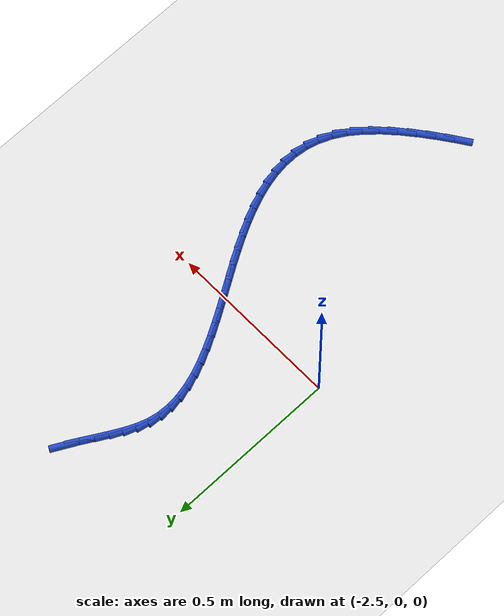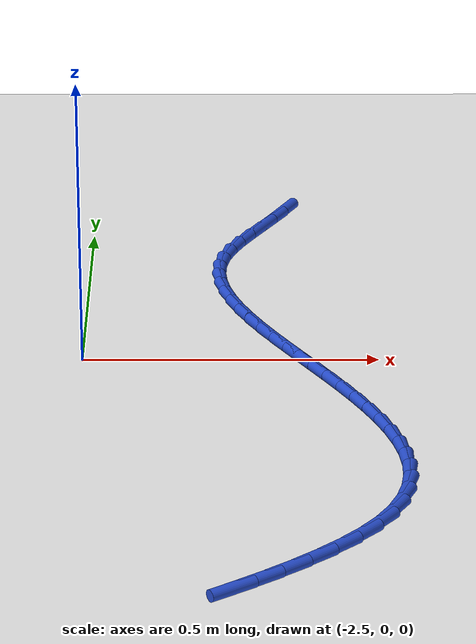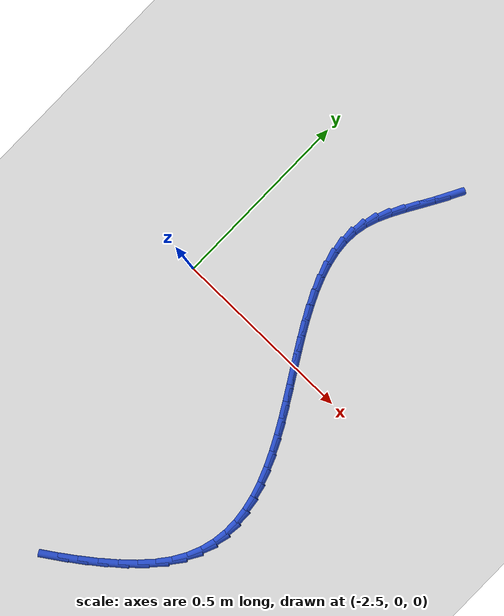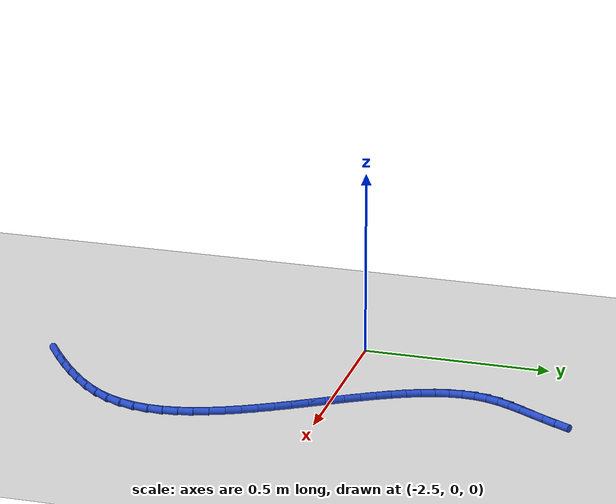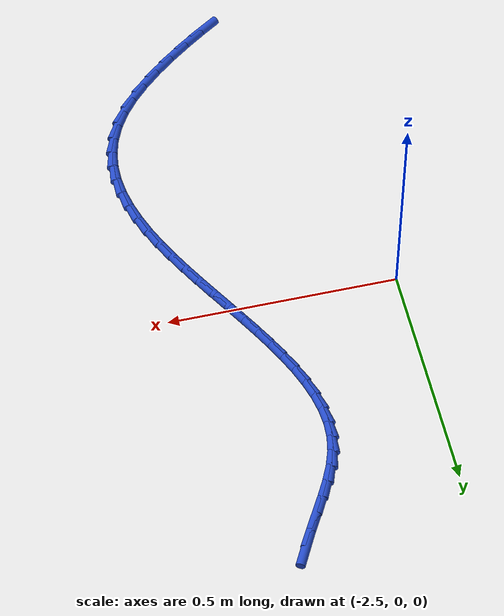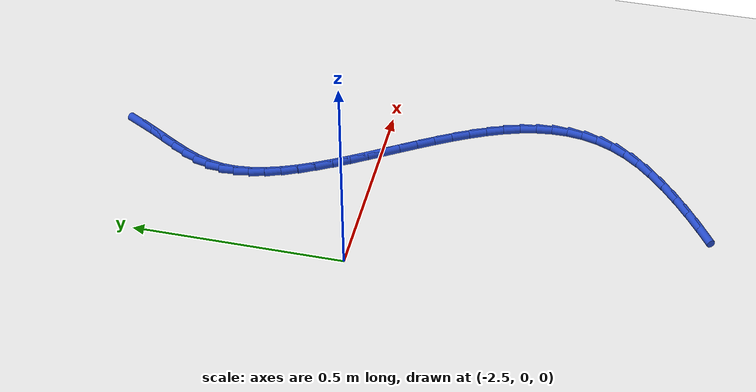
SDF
<sdf version="1.6">
 <world name="default">
  <model name="ground_plane">
   <static>1</static>
   <link name="link">
    <collision name="collision">
     <geometry><plane><normal>0 0 1</normal><size>100 100</size></plane></geometry>
     <surface><friction><ode><mu>100</mu><mu2>50</mu2></ode></friction></surface>
    </collision>
    <visual name="visual">
     <cast_shadows>0</cast_shadows>
     <geometry><plane><normal>0 0 1</normal><size>100 100</size></plane></geometry>
     <material>
      <script><uri>file://media/materials/scripts/gazebo.material</uri><name>Gazebo/WhiteGlow</name></script>
     </material>
    </visual>
   </link>
  </model>
  <model name="line">
   <link name="link_92">
    <pose>-2.1569101457007522 0.5942818139172366 0.01 0 1.57 1.0788738891274638</pose>
    <collision name="collision">
     <geometry><cylinder><radius>0.01</radius><length>0.08</length></cylinder></geometry>
    </collision>
    <visual name="visual">
     <material>
      <script><name>Gazebo/Blue</name><uri>file://media/materials/scripts/gazebo.material</uri></script>
     </material>
     <geometry><cylinder><radius>0.01</radius><length>0.08</length></cylinder></geometry>
    </visual>
   </link>
   <link name="link_93">
    <pose>-2.176479058954072 0.5577631131018529 0.01 0 1.57 1.0461234089684404</pose>
    <collision name="collision">
     <geometry><cylinder><radius>0.01</radius><length>0.08</length></cylinder></geometry>
    </collision>
    <visual name="visual">
     <material>
      <script><name>Gazebo/Blue</name><uri>file://media/materials/scripts/gazebo.material</uri></script>
     </material>
     <geometry><cylinder><radius>0.01</radius><length>0.08</length></cylinder></geometry>
    </visual>
   </link>
   <link name="link_94">
    <pose>-2.1967582421894334 0.5227255065405398 0.01 0 1.57 1.0421132653548126</pose>
    <collision name="collision">
     <geometry><cylinder><radius>0.01</radius><length>0.08</length></cylinder></geometry>
    </collision>
    <visual name="visual">
     <material>
      <script><name>Gazebo/Blue</name><uri>file://media/materials/scripts/gazebo.material</uri></script>
     </material>
     <geometry><cylinder><radius>0.01</radius><length>0.08</length></cylinder></geometry>
    </visual>
   </link>
   <link name="link_95">
    <pose>-2.2165904875612408 0.4887748637339923 0.01 0 1.57 1.0694247133861268</pose>
    <collision name="collision">
     <geometry><cylinder><radius>0.01</radius><length>0.08</length></cylinder></geometry>
    </collision>
    <visual name="visual">
     <material>
      <script><name>Gazebo/Blue</name><uri>file://media/materials/scripts/gazebo.material</uri></script>
     </material>
     <geometry><cylinder><radius>0.01</radius><length>0.08</length></cylinder></geometry>
    </visual>
   </link>
   <link name="link_96">
    <pose>-2.2348185872239013 0.4555170541829038 0.01 0 1.57 1.1320328790445908</pose>
    <collision name="collision">
     <geometry><cylinder><radius>0.01</radius><length>0.08</length></cylinder></geometry>
    </collision>
    <visual name="visual">
     <material>
      <script><name>Gazebo/Blue</name><uri>file://media/materials/scripts/gazebo.material</uri></script>
     </material>
     <geometry><cylinder><radius>0.01</radius><length>0.08</length></cylinder></geometry>
    </visual>
   </link>
   <link name="link_97">
    <pose>-2.250285333331819 0.42255794738796915 0.01 0 1.57 1.2346849685255605</pose>
    <collision name="collision">
     <geometry><cylinder><radius>0.01</radius><length>0.08</length></cylinder></geometry>
    </collision>
    <visual name="visual">
     <material>
      <script><name>Gazebo/Blue</name><uri>file://media/materials/scripts/gazebo.material</uri></script>
     </material>
     <geometry><cylinder><radius>0.01</radius><length>0.08</length></cylinder></geometry>
    </visual>
   </link>
   <link name="link_98">
    <pose>-2.261833518039401 0.38950341284988205 0.01 0 1.57 1.37721544960513</pose>
    <collision name="collision">
     <geometry><cylinder><radius>0.01</radius><length>0.08</length></cylinder></geometry>
    </collision>
    <visual name="visual">
     <material>
      <script><name>Gazebo/Blue</name><uri>file://media/materials/scripts/gazebo.material</uri></script>
     </material>
     <geometry><cylinder><radius>0.01</radius><length>0.08</length></cylinder></geometry>
    </visual>
   </link>
   <link name="link_99">
    <pose>-2.268404277793017 0.35598523952294214 0.01 0 1.57 1.5266387335055462</pose>
    <collision name="collision">
     <geometry><cylinder><radius>0.01</radius><length>0.08</length></cylinder></geometry>
    </collision>
    <visual name="visual">
     <material>
      <script><name>Gazebo/Blue</name><uri>file://media/materials/scripts/gazebo.material</uri></script>
     </material>
     <geometry><cylinder><radius>0.01</radius><length>0.08</length></cylinder></geometry>
    </visual>
   </link>
   <link name="link_100">
    <pose>-2.2699107590817555 0.3218913976679961 0.01 0 1.57 -1.481807915594717</pose>
    <collision name="collision">
     <geometry><cylinder><radius>0.01</radius><length>0.08</length></cylinder></geometry>
    </collision>
    <visual name="visual">
     <material>
      <script><name>Gazebo/Blue</name><uri>file://media/materials/scripts/gazebo.material</uri></script>
     </material>
     <geometry><cylinder><radius>0.01</radius><length>0.08</length></cylinder></geometry>
    </visual>
   </link>
   <link name="link_101">
    <pose>-2.2668204446412354 0.28725595746014987 0.01 0 1.57 -1.368346243201321</pose>
    <collision name="collision">
     <geometry><cylinder><radius>0.01</radius><length>0.08</length></cylinder></geometry>
    </collision>
    <visual name="visual">
     <material>
      <script><name>Gazebo/Blue</name><uri>file://media/materials/scripts/gazebo.material</uri></script>
     </material>
     <geometry><cylinder><radius>0.01</radius><length>0.08</length></cylinder></geometry>
    </visual>
   </link>
   <link name="link_102">
    <pose>-2.259607275632391 0.2521146912460552 0.01 0 1.57 -1.274742530770553</pose>
    <collision name="collision">
     <geometry><cylinder><radius>0.01</radius><length>0.08</length></cylinder></geometry>
    </collision>
    <visual name="visual">
     <material>
      <script><name>Gazebo/Blue</name><uri>file://media/materials/scripts/gazebo.material</uri></script>
     </material>
     <geometry><cylinder><radius>0.01</radius><length>0.08</length></cylinder></geometry>
    </visual>
   </link>
   <link name="link_103">
    <pose>-2.2487451932161577 0.21650337137236214 0.01 0 1.57 -1.199439524915591</pose>
    <collision name="collision">
     <geometry><cylinder><radius>0.01</radius><length>0.08</length></cylinder></geometry>
    </collision>
    <visual name="visual">
     <material>
      <script><name>Gazebo/Blue</name><uri>file://media/materials/scripts/gazebo.material</uri></script>
     </material>
     <geometry><cylinder><radius>0.01</radius><length>0.08</length></cylinder></geometry>
    </visual>
   </link>
   <link name="link_104">
    <pose>-2.2347081385534695 0.18045777018572284 0.01 0 1.57 -1.1402512146313977</pose>
    <collision name="collision">
     <geometry><cylinder><radius>0.01</radius><length>0.08</length></cylinder></geometry>
    </collision>
    <visual name="visual">
     <material>
      <script><name>Gazebo/Blue</name><uri>file://media/materials/scripts/gazebo.material</uri></script>
     </material>
     <geometry><cylinder><radius>0.01</radius><length>0.08</length></cylinder></geometry>
    </visual>
   </link>
   <link name="link_105">
    <pose>-2.21797005280526 0.14401366003278715 0.01 0 1.57 -1.0950136654537983</pose>
    <collision name="collision">
     <geometry><cylinder><radius>0.01</radius><length>0.08</length></cylinder></geometry>
    </collision>
    <visual name="visual">
     <material>
      <script><name>Gazebo/Blue</name><uri>file://media/materials/scripts/gazebo.material</uri></script>
     </material>
     <geometry><cylinder><radius>0.01</radius><length>0.08</length></cylinder></geometry>
    </visual>
   </link>
   <link name="link_106">
    <pose>-2.199004877132464 0.10720681326020703 0.01 0 1.57 -1.06187993469689</pose>
    <collision name="collision">
     <geometry><cylinder><radius>0.01</radius><length>0.08</length></cylinder></geometry>
    </collision>
    <visual name="visual">
     <material>
      <script><name>Gazebo/Blue</name><uri>file://media/materials/scripts/gazebo.material</uri></script>
     </material>
     <geometry><cylinder><radius>0.01</radius><length>0.08</length></cylinder></geometry>
    </visual>
   </link>
   <link name="link_107">
    <pose>-2.1782865526960165 0.07007300221463306 0.01 0 1.57 -1.0394132837308487</pose>
    <collision name="collision">
     <geometry><cylinder><radius>0.01</radius><length>0.08</length></cylinder></geometry>
    </collision>
    <visual name="visual">
     <material>
      <script><name>Gazebo/Blue</name><uri>file://media/materials/scripts/gazebo.material</uri></script>
     </material>
     <geometry><cylinder><radius>0.01</radius><length>0.08</length></cylinder></geometry>
    </visual>
   </link>
   <link name="link_108">
    <pose>-2.156289020656851 0.032647999242715685 0.01 0 1.57 -1.0265891306665724</pose>
    <collision name="collision">
     <geometry><cylinder><radius>0.01</radius><length>0.08</length></cylinder></geometry>
    </collision>
    <visual name="visual">
     <material>
      <script><name>Gazebo/Blue</name><uri>file://media/materials/scripts/gazebo.material</uri></script>
     </material>
     <geometry><cylinder><radius>0.01</radius><length>0.08</length></cylinder></geometry>
    </visual>
   </link>
   <link name="link_109">
    <pose>-2.133486222175902 -0.005032423308893051 0.01 0 1.57 -1.0227663564151037</pose>
    <collision name="collision">
     <geometry><cylinder><radius>0.01</radius><length>0.08</length></cylinder></geometry>
    </collision>
    <visual name="visual">
     <material>
      <script><name>Gazebo/Blue</name><uri>file://media/materials/scripts/gazebo.material</uri></script>
     </material>
     <geometry><cylinder><radius>0.01</radius><length>0.08</length></cylinder></geometry>
    </visual>
   </link>
   <link name="link_110">
    <pose>-2.1103520984141046 -0.04293249309354316 0.01 0 1.57 -1.0276562432326881</pose>
    <collision name="collision">
     <geometry><cylinder><radius>0.01</radius><length>0.08</length></cylinder></geometry>
    </collision>
    <visual name="visual">
     <material>
      <script><name>Gazebo/Blue</name><uri>file://media/materials/scripts/gazebo.material</uri></script>
     </material>
     <geometry><cylinder><radius>0.01</radius><length>0.08</length></cylinder></geometry>
    </visual>
   </link>
   <link name="link_111">
    <pose>-2.087360590532392 -0.08101643776458273 0.01 0 1.57 -1.041299931814616</pose>
    <collision name="collision">
     <geometry><cylinder><radius>0.01</radius><length>0.08</length></cylinder></geometry>
    </collision>
    <visual name="visual">
     <material>
      <script><name>Gazebo/Blue</name><uri>file://media/materials/scripts/gazebo.material</uri></script>
     </material>
     <geometry><cylinder><radius>0.01</radius><length>0.08</length></cylinder></geometry>
    </visual>
   </link>
   <link name="link_112">
    <pose>-2.0649856396917006 -0.1192484849753617 0.01 0 1.57 -1.0640561956062435</pose>
    <collision name="collision">
     <geometry><cylinder><radius>0.01</radius><length>0.08</length></cylinder></geometry>
    </collision>
    <visual name="visual">
     <material>
      <script><name>Gazebo/Blue</name><uri>file://media/materials/scripts/gazebo.material</uri></script>
     </material>
     <geometry><cylinder><radius>0.01</radius><length>0.08</length></cylinder></geometry>
    </visual>
   </link>
   <link name="link_113">
    <pose>-2.043701187052963 -0.15759286237922807 0.01 0 1.57 -1.0965953459257</pose>
    <collision name="collision">
     <geometry><cylinder><radius>0.01</radius><length>0.08</length></cylinder></geometry>
    </collision>
    <visual name="visual">
     <material>
      <script><name>Gazebo/Blue</name><uri>file://media/materials/scripts/gazebo.material</uri></script>
     </material>
     <geometry><cylinder><radius>0.01</radius><length>0.08</length></cylinder></geometry>
    </visual>
   </link>
   <link name="link_114">
    <pose>-2.0239811737771136 -0.19601379762953183 0.01 0 1.57 -1.1398884848863273</pose>
    <collision name="collision">
     <geometry><cylinder><radius>0.01</radius><length>0.08</length></cylinder></geometry>
    </collision>
    <visual name="visual">
     <material>
      <script><name>Gazebo/Blue</name><uri>file://media/materials/scripts/gazebo.material</uri></script>
     </material>
     <geometry><cylinder><radius>0.01</radius><length>0.08</length></cylinder></geometry>
    </visual>
   </link>
   <link name="link_115">
    <pose>-2.0062995410250877 -0.234475518379621 0.01 0 1.57 -1.1951711310356492</pose>
    <collision name="collision">
     <geometry><cylinder><radius>0.01</radius><length>0.08</length></cylinder></geometry>
    </collision>
    <visual name="visual">
     <material>
      <script><name>Gazebo/Blue</name><uri>file://media/materials/scripts/gazebo.material</uri></script>
     </material>
     <geometry><cylinder><radius>0.01</radius><length>0.08</length></cylinder></geometry>
    </visual>
   </link>
   <link name="link_116">
    <pose>-1.9911302299578197 -0.27294225228284524 0.01 0 1.57 -1.2638444069199752</pose>
    <collision name="collision">
     <geometry><cylinder><radius>0.01</radius><length>0.08</length></cylinder></geometry>
    </collision>
    <visual name="visual">
     <material>
      <script><name>Gazebo/Blue</name><uri>file://media/materials/scripts/gazebo.material</uri></script>
     </material>
     <geometry><cylinder><radius>0.01</radius><length>0.08</length></cylinder></geometry>
    </visual>
   </link>
   <link name="link_117">
    <pose>-1.9789471817362432 -0.3113782269925543 0.01 0 1.57 -1.3472573687049134</pose>
    <collision name="collision">
     <geometry><cylinder><radius>0.01</radius><length>0.08</length></cylinder></geometry>
    </collision>
    <visual name="visual">
     <material>
      <script><name>Gazebo/Blue</name><uri>file://media/materials/scripts/gazebo.material</uri></script>
     </material>
     <geometry><cylinder><radius>0.01</radius><length>0.08</length></cylinder></geometry>
    </visual>
   </link>
   <link name="link_118">
    <pose>-1.9702243375212938 -0.3497476701620954 0.01 0 1.57 -1.4463047945458527</pose>
    <collision name="collision">
     <geometry><cylinder><radius>0.01</radius><length>0.08</length></cylinder></geometry>
    </collision>
    <visual name="visual">
     <material>
      <script><name>Gazebo/Blue</name><uri>file://media/materials/scripts/gazebo.material</uri></script>
     </material>
     <geometry><cylinder><radius>0.01</radius><length>0.08</length></cylinder></geometry>
    </visual>
   </link>
   <link name="link_119">
    <pose>-1.9654356384739042 -0.38801480944481836 0.01 0 1.57 -1.5608144377266686</pose>
    <collision name="collision">
     <geometry><cylinder><radius>0.01</radius><length>0.08</length></cylinder></geometry>
    </collision>
    <visual name="visual">
     <material>
      <script><name>Gazebo/Blue</name><uri>file://media/materials/scripts/gazebo.material</uri></script>
     </material>
     <geometry><cylinder><radius>0.01</radius><length>0.08</length></cylinder></geometry>
    </visual>
   </link>
   <link name="link_120">
    <pose>-1.96505502575501 -0.42614387249407226 0.01 0 1.57 1.4527496686229517</pose>
    <collision name="collision">
     <geometry><cylinder><radius>0.01</radius><length>0.08</length></cylinder></geometry>
    </collision>
    <visual name="visual">
     <material>
      <script><name>Gazebo/Blue</name><uri>file://media/materials/scripts/gazebo.material</uri></script>
     </material>
     <geometry><cylinder><radius>0.01</radius><length>0.08</length></cylinder></geometry>
    </visual>
   </link>
   <link name="link_121">
    <pose>-1.9695564405255448 -0.4640990869632061 0.01 0 1.57 1.3153483702381141</pose>
    <collision name="collision">
     <geometry><cylinder><radius>0.01</radius><length>0.08</length></cylinder></geometry>
    </collision>
    <visual name="visual">
     <material>
      <script><name>Gazebo/Blue</name><uri>file://media/materials/scripts/gazebo.material</uri></script>
     </material>
     <geometry><cylinder><radius>0.01</radius><length>0.08</length></cylinder></geometry>
    </visual>
   </link>
   <link name="link_122">
    <pose>-1.979413823946444 -0.50184468050557 0.01 0 1.57 1.174592523456006</pose>
    <collision name="collision">
     <geometry><cylinder><radius>0.01</radius><length>0.08</length></cylinder></geometry>
    </collision>
    <visual name="visual">
     <material>
      <script><name>Gazebo/Blue</name><uri>file://media/materials/scripts/gazebo.material</uri></script>
     </material>
     <geometry><cylinder><radius>0.01</radius><length>0.08</length></cylinder></geometry>
    </visual>
   </link>
   <link name="link_123">
    <pose>-1.9951011171786417 -0.5393448807745109 0.01 0 1.57 1.0371264059971448</pose>
    <collision name="collision">
     <geometry><cylinder><radius>0.01</radius><length>0.08</length></cylinder></geometry>
    </collision>
    <visual name="visual">
     <material>
      <script><name>Gazebo/Blue</name><uri>file://media/materials/scripts/gazebo.material</uri></script>
     </material>
     <geometry><cylinder><radius>0.01</radius><length>0.08</length></cylinder></geometry>
    </visual>
   </link>
   <link name="link_124">
    <pose>-2.0170922613830715 -0.5765639154233787 0.01 0 1.57 0.9106276606011203</pose>
    <collision name="collision">
     <geometry><cylinder><radius>0.01</radius><length>0.08</length></cylinder></geometry>
    </collision>
    <visual name="visual">
     <material>
      <script><name>Gazebo/Blue</name><uri>file://media/materials/scripts/gazebo.material</uri></script>
     </material>
     <geometry><cylinder><radius>0.01</radius><length>0.08</length></cylinder></geometry>
    </visual>
   </link>
   <link name="link_125">
    <pose>-2.0457191639143524 -0.6134364252786582 0.01 0 1.57 0.811910349870101</pose>
    <collision name="collision">
     <geometry><cylinder><radius>0.01</radius><length>0.08</length></cylinder></geometry>
    </collision>
    <visual name="visual">
     <material>
      <script><name>Gazebo/Blue</name><uri>file://media/materials/scripts/gazebo.material</uri></script>
     </material>
     <geometry><cylinder><radius>0.01</radius><length>0.08</length></cylinder></geometry>
    </visual>
   </link>
   <link name="link_126">
    <pose>-2.080045445634175 -0.6496328565088597 0.01 0 1.57 0.7395568300772034</pose>
    <collision name="collision">
     <geometry><cylinder><radius>0.01</radius><length>0.08</length></cylinder></geometry>
    </collision>
    <visual name="visual">
     <material>
      <script><name>Gazebo/Blue</name><uri>file://media/materials/scripts/gazebo.material</uri></script>
     </material>
     <geometry><cylinder><radius>0.01</radius><length>0.08</length></cylinder></geometry>
    </visual>
   </link>
   <link name="link_127">
    <pose>-2.1184678484536357 -0.6846847388332142 0.01 0 1.57 0.6852367155364828</pose>
    <collision name="collision">
     <geometry><cylinder><radius>0.01</radius><length>0.08</length></cylinder></geometry>
    </collision>
    <visual name="visual">
     <material>
      <script><name>Gazebo/Blue</name><uri>file://media/materials/scripts/gazebo.material</uri></script>
     </material>
     <geometry><cylinder><radius>0.01</radius><length>0.08</length></cylinder></geometry>
    </visual>
   </link>
   <link name="link_128">
    <pose>-2.159377176008704 -0.7181223649787029 0.01 0 1.57 0.6437058603537545</pose>
    <collision name="collision">
     <geometry><cylinder><radius>0.01</radius><length>0.08</length></cylinder></geometry>
    </collision>
    <visual name="visual">
     <material>
      <script><name>Gazebo/Blue</name><uri>file://media/materials/scripts/gazebo.material</uri></script>
     </material>
     <geometry><cylinder><radius>0.01</radius><length>0.08</length></cylinder></geometry>
    </visual>
   </link>
   <link name="link_129">
    <pose>-2.201164231935351 -0.7494760276723054 0.01 0 1.57 0.6117237560001625</pose>
    <collision name="collision">
     <geometry><cylinder><radius>0.01</radius><length>0.08</length></cylinder></geometry>
    </collision>
    <visual name="visual">
     <material>
      <script><name>Gazebo/Blue</name><uri>file://media/materials/scripts/gazebo.material</uri></script>
     </material>
     <geometry><cylinder><radius>0.01</radius><length>0.08</length></cylinder></geometry>
    </visual>
   </link>
   <link name="link_130">
    <pose>-2.242219819869544 -0.7782760196410019 0.01 0 1.57 0.5874062623148488</pose>
    <collision name="collision">
     <geometry><cylinder><radius>0.01</radius><length>0.08</length></cylinder></geometry>
    </collision>
    <visual name="visual">
     <material>
      <script><name>Gazebo/Blue</name><uri>file://media/materials/scripts/gazebo.material</uri></script>
     </material>
     <geometry><cylinder><radius>0.01</radius><length>0.08</length></cylinder></geometry>
    </visual>
   </link>
  </model>
 </world>
</sdf>
